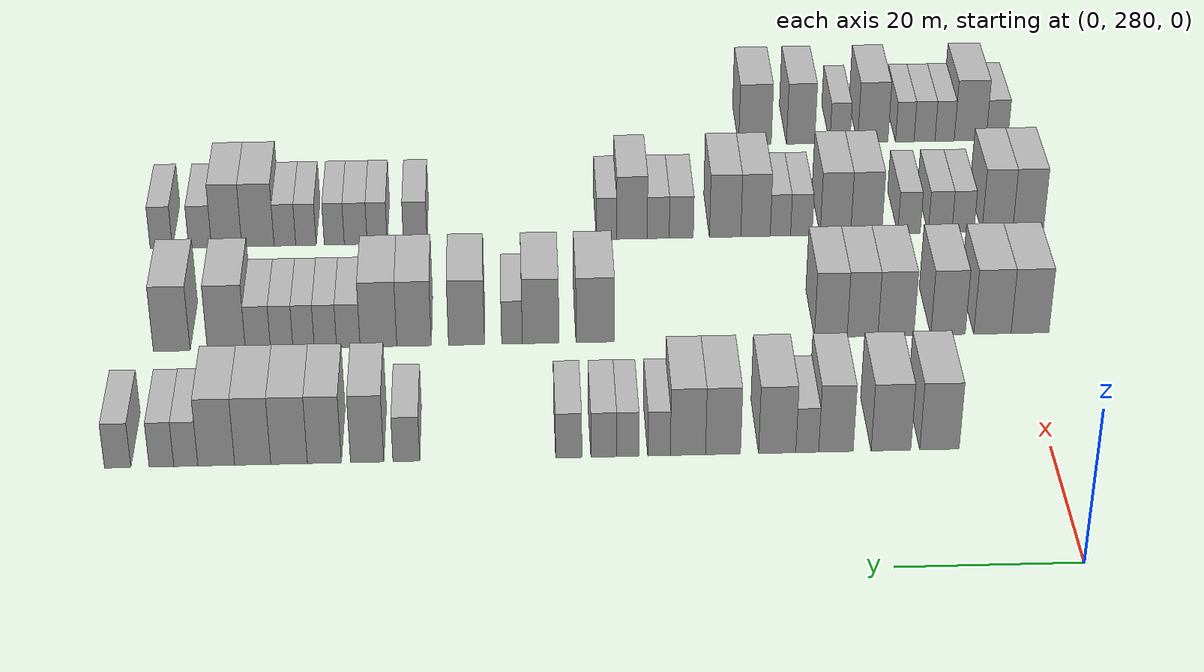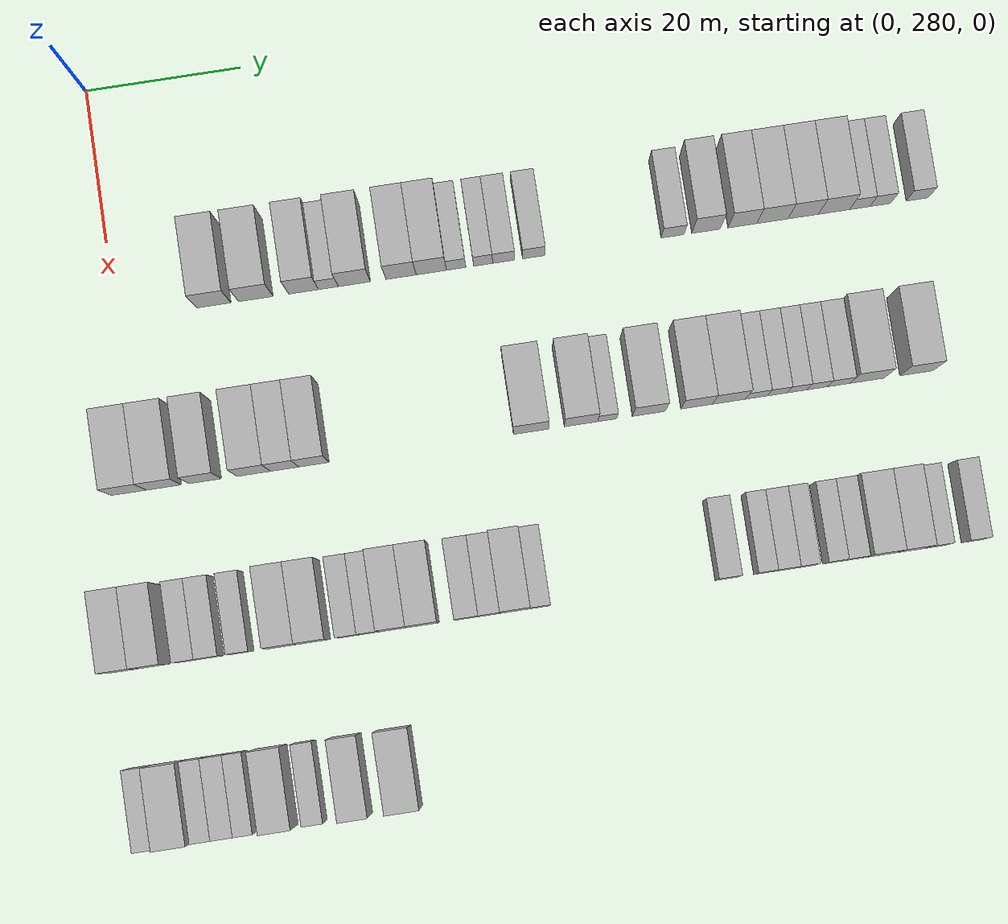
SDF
<sdf version="1.6">
 <world name="default">
  <model name="building_159">
   <static>1</static>
   <pose>25.0000 292.4620 0 0.000000 0.000000 0.000000</pose>
   <link name="link">
    <pose>0 0 4.50 0 0 0</pose>
    <collision name="collision"><geometry><box><size>10.0000 4.3796 9.0000</size></box></geometry></collision>
    <visual name="visual">
     <cast_shadows>0</cast_shadows>
     <geometry><box><size>10.0000 4.3796 9.0000</size></box></geometry>
     <material>
      <script>
       <uri>model://HANNAS_wall/materials/scripts</uri>
       <uri>model://HANNAS_wall/materials/textures</uri>
       <name>vrc/HANNAS_wall</name>
      </script>
     </material>
    </visual>
   </link>
  </model>
  <model name="building_160">
   <static>1</static>
   <pose>25.0000 297.8485 0 0.000000 0.000000 0.000000</pose>
   <link name="link">
    <pose>0 0 4.50 0 0 0</pose>
    <collision name="collision"><geometry><box><size>10.0000 4.3934 9.0000</size></box></geometry></collision>
    <visual name="visual">
     <cast_shadows>0</cast_shadows>
     <geometry><box><size>10.0000 4.3934 9.0000</size></box></geometry>
     <material>
      <script>
       <uri>model://HANNAS_wall/materials/scripts</uri>
       <uri>model://HANNAS_wall/materials/textures</uri>
       <name>vrc/HANNAS_wall</name>
      </script>
     </material>
    </visual>
   </link>
  </model>
  <model name="building_161">
   <static>1</static>
   <pose>25.0000 303.9558 0 0.000000 0.000000 0.000000</pose>
   <link name="link">
    <pose>0 0 4.50 0 0 0</pose>
    <collision name="collision"><geometry><box><size>10.0000 3.8213 9.0000</size></box></geometry></collision>
    <visual name="visual">
     <cast_shadows>0</cast_shadows>
     <geometry><box><size>10.0000 3.8213 9.0000</size></box></geometry>
     <material>
      <script>
       <uri>model://HANNAS_wall/materials/scripts</uri>
       <uri>model://HANNAS_wall/materials/textures</uri>
       <name>vrc/HANNAS_wall</name>
      </script>
     </material>
    </visual>
   </link>
  </model>
  <model name="building_162">
   <static>1</static>
   <pose>25.0000 307.1321 0 0.000000 0.000000 0.000000</pose>
   <link name="link">
    <pose>0 0 3.00 0 0 0</pose>
    <collision name="collision"><geometry><box><size>10.0000 2.5312 6.0000</size></box></geometry></collision>
    <visual name="visual">
     <cast_shadows>0</cast_shadows>
     <geometry><box><size>10.0000 2.5312 6.0000</size></box></geometry>
     <material>
      <script>
       <uri>model://HANNAS_wall/materials/scripts</uri>
       <uri>model://HANNAS_wall/materials/textures</uri>
       <name>vrc/HANNAS_wall</name>
      </script>
     </material>
    </visual>
   </link>
  </model>
  <model name="building_163">
   <static>1</static>
   <pose>25.0000 310.4619 0 0.000000 0.000000 0.000000</pose>
   <link name="link">
    <pose>0 0 4.50 0 0 0</pose>
    <collision name="collision"><geometry><box><size>10.0000 4.1284 9.0000</size></box></geometry></collision>
    <visual name="visual">
     <cast_shadows>0</cast_shadows>
     <geometry><box><size>10.0000 4.1284 9.0000</size></box></geometry>
     <material>
      <script>
       <uri>model://HANNAS_wall/materials/scripts</uri>
       <uri>model://HANNAS_wall/materials/textures</uri>
       <name>vrc/HANNAS_wall</name>
      </script>
     </material>
    </visual>
   </link>
  </model>
  <model name="building_164">
   <static>1</static>
   <pose>25.0000 316.4625 0 0.000000 0.000000 0.000000</pose>
   <link name="link">
    <pose>0 0 4.50 0 0 0</pose>
    <collision name="collision"><geometry><box><size>10.0000 3.8729 9.0000</size></box></geometry></collision>
    <visual name="visual">
     <cast_shadows>0</cast_shadows>
     <geometry><box><size>10.0000 3.8729 9.0000</size></box></geometry>
     <material>
      <script>
       <uri>model://HANNAS_wall/materials/scripts</uri>
       <uri>model://HANNAS_wall/materials/textures</uri>
       <name>vrc/HANNAS_wall</name>
      </script>
     </material>
    </visual>
   </link>
  </model>
  <model name="building_165">
   <static>1</static>
   <pose>25.0000 320.3444 0 0.000000 0.000000 0.000000</pose>
   <link name="link">
    <pose>0 0 4.50 0 0 0</pose>
    <collision name="collision"><geometry><box><size>10.0000 3.8910 9.0000</size></box></geometry></collision>
    <visual name="visual">
     <cast_shadows>0</cast_shadows>
     <geometry><box><size>10.0000 3.8910 9.0000</size></box></geometry>
     <material>
      <script>
       <uri>model://HANNAS_wall/materials/scripts</uri>
       <uri>model://HANNAS_wall/materials/textures</uri>
       <name>vrc/HANNAS_wall</name>
      </script>
     </material>
    </visual>
   </link>
  </model>
  <model name="building_166">
   <static>1</static>
   <pose>25.0000 323.5302 0 0.000000 0.000000 0.000000</pose>
   <link name="link">
    <pose>0 0 3.00 0 0 0</pose>
    <collision name="collision"><geometry><box><size>10.0000 2.4806 6.0000</size></box></geometry></collision>
    <visual name="visual">
     <cast_shadows>0</cast_shadows>
     <geometry><box><size>10.0000 2.4806 6.0000</size></box></geometry>
     <material>
      <script>
       <uri>model://HANNAS_wall/materials/scripts</uri>
       <uri>model://HANNAS_wall/materials/textures</uri>
       <name>vrc/HANNAS_wall</name>
      </script>
     </material>
    </visual>
   </link>
  </model>
  <model name="building_167">
   <static>1</static>
   <pose>25.0000 326.9950 0 0.000000 0.000000 0.000000</pose>
   <link name="link">
    <pose>0 0 3.00 0 0 0</pose>
    <collision name="collision"><geometry><box><size>10.0000 2.4490 6.0000</size></box></geometry></collision>
    <visual name="visual">
     <cast_shadows>0</cast_shadows>
     <geometry><box><size>10.0000 2.4490 6.0000</size></box></geometry>
     <material>
      <script>
       <uri>model://HANNAS_wall/materials/scripts</uri>
       <uri>model://HANNAS_wall/materials/textures</uri>
       <name>vrc/HANNAS_wall</name>
      </script>
     </material>
    </visual>
   </link>
  </model>
  <model name="building_168">
   <static>1</static>
   <pose>25.0000 329.6343 0 0.000000 0.000000 0.000000</pose>
   <link name="link">
    <pose>0 0 3.00 0 0 0</pose>
    <collision name="collision"><geometry><box><size>10.0000 2.8294 6.0000</size></box></geometry></collision>
    <visual name="visual">
     <cast_shadows>0</cast_shadows>
     <geometry><box><size>10.0000 2.8294 6.0000</size></box></geometry>
     <material>
      <script>
       <uri>model://HANNAS_wall/materials/scripts</uri>
       <uri>model://HANNAS_wall/materials/textures</uri>
       <name>vrc/HANNAS_wall</name>
      </script>
     </material>
    </visual>
   </link>
  </model>
  <model name="building_169">
   <static>1</static>
   <pose>25.0000 333.4883 0 0.000000 0.000000 0.000000</pose>
   <link name="link">
    <pose>0 0 3.00 0 0 0</pose>
    <collision name="collision"><geometry><box><size>10.0000 2.8788 6.0000</size></box></geometry></collision>
    <visual name="visual">
     <cast_shadows>0</cast_shadows>
     <geometry><box><size>10.0000 2.8788 6.0000</size></box></geometry>
     <material>
      <script>
       <uri>model://HANNAS_wall/materials/scripts</uri>
       <uri>model://HANNAS_wall/materials/textures</uri>
       <name>vrc/HANNAS_wall</name>
      </script>
     </material>
    </visual>
   </link>
  </model>
  <model name="building_170">
   <static>1</static>
   <pose>25.0000 351.3500 0 0.000000 0.000000 0.000000</pose>
   <link name="link">
    <pose>0 0 3.00 0 0 0</pose>
    <collision name="collision"><geometry><box><size>10.0000 2.9482 6.0000</size></box></geometry></collision>
    <visual name="visual">
     <cast_shadows>0</cast_shadows>
     <geometry><box><size>10.0000 2.9482 6.0000</size></box></geometry>
     <material>
      <script>
       <uri>model://HANNAS_wall/materials/scripts</uri>
       <uri>model://HANNAS_wall/materials/textures</uri>
       <name>vrc/HANNAS_wall</name>
      </script>
     </material>
    </visual>
   </link>
  </model>
  <model name="building_171">
   <static>1</static>
   <pose>25.0000 355.6540 0 0.000000 0.000000 0.000000</pose>
   <link name="link">
    <pose>0 0 4.50 0 0 0</pose>
    <collision name="collision"><geometry><box><size>10.0000 3.6598 9.0000</size></box></geometry></collision>
    <visual name="visual">
     <cast_shadows>0</cast_shadows>
     <geometry><box><size>10.0000 3.6598 9.0000</size></box></geometry>
     <material>
      <script>
       <uri>model://HANNAS_wall/materials/scripts</uri>
       <uri>model://HANNAS_wall/materials/textures</uri>
       <name>vrc/HANNAS_wall</name>
      </script>
     </material>
    </visual>
   </link>
  </model>
  <model name="building_172">
   <static>1</static>
   <pose>25.0000 360.3440 0 0.000000 0.000000 0.000000</pose>
   <link name="link">
    <pose>0 0 4.50 0 0 0</pose>
    <collision name="collision"><geometry><box><size>10.0000 3.7204 9.0000</size></box></geometry></collision>
    <visual name="visual">
     <cast_shadows>0</cast_shadows>
     <geometry><box><size>10.0000 3.7204 9.0000</size></box></geometry>
     <material>
      <script>
       <uri>model://HANNAS_wall/materials/scripts</uri>
       <uri>model://HANNAS_wall/materials/textures</uri>
       <name>vrc/HANNAS_wall</name>
      </script>
     </material>
    </visual>
   </link>
  </model>
  <model name="building_173">
   <static>1</static>
   <pose>25.0000 364.2121 0 0.000000 0.000000 0.000000</pose>
   <link name="link">
    <pose>0 0 4.50 0 0 0</pose>
    <collision name="collision"><geometry><box><size>10.0000 4.0158 9.0000</size></box></geometry></collision>
    <visual name="visual">
     <cast_shadows>0</cast_shadows>
     <geometry><box><size>10.0000 4.0158 9.0000</size></box></geometry>
     <material>
      <script>
       <uri>model://HANNAS_wall/materials/scripts</uri>
       <uri>model://HANNAS_wall/materials/textures</uri>
       <name>vrc/HANNAS_wall</name>
      </script>
     </material>
    </visual>
   </link>
  </model>
  <model name="building_174">
   <static>1</static>
   <pose>25.0000 368.1944 0 0.000000 0.000000 0.000000</pose>
   <link name="link">
    <pose>0 0 4.50 0 0 0</pose>
    <collision name="collision"><geometry><box><size>10.0000 3.9489 9.0000</size></box></geometry></collision>
    <visual name="visual">
     <cast_shadows>0</cast_shadows>
     <geometry><box><size>10.0000 3.9489 9.0000</size></box></geometry>
     <material>
      <script>
       <uri>model://HANNAS_wall/materials/scripts</uri>
       <uri>model://HANNAS_wall/materials/textures</uri>
       <name>vrc/HANNAS_wall</name>
      </script>
     </material>
    </visual>
   </link>
  </model>
  <model name="building_175">
   <static>1</static>
   <pose>25.0000 372.1816 0 0.000000 0.000000 0.000000</pose>
   <link name="link">
    <pose>0 0 4.50 0 0 0</pose>
    <collision name="collision"><geometry><box><size>10.0000 4.0254 9.0000</size></box></geometry></collision>
    <visual name="visual">
     <cast_shadows>0</cast_shadows>
     <geometry><box><size>10.0000 4.0254 9.0000</size></box></geometry>
     <material>
      <script>
       <uri>model://HANNAS_wall/materials/scripts</uri>
       <uri>model://HANNAS_wall/materials/textures</uri>
       <name>vrc/HANNAS_wall</name>
      </script>
     </material>
    </visual>
   </link>
  </model>
  <model name="building_176">
   <static>1</static>
   <pose>25.0000 375.5093 0 0.000000 0.000000 0.000000</pose>
   <link name="link">
    <pose>0 0 3.00 0 0 0</pose>
    <collision name="collision"><geometry><box><size>10.0000 2.6300 6.0000</size></box></geometry></collision>
    <visual name="visual">
     <cast_shadows>0</cast_shadows>
     <geometry><box><size>10.0000 2.6300 6.0000</size></box></geometry>
     <material>
      <script>
       <uri>model://HANNAS_wall/materials/scripts</uri>
       <uri>model://HANNAS_wall/materials/textures</uri>
       <name>vrc/HANNAS_wall</name>
      </script>
     </material>
    </visual>
   </link>
  </model>
  <model name="building_177">
   <static>1</static>
   <pose>25.0000 378.1706 0 0.000000 0.000000 0.000000</pose>
   <link name="link">
    <pose>0 0 3.00 0 0 0</pose>
    <collision name="collision"><geometry><box><size>10.0000 2.6928 6.0000</size></box></geometry></collision>
    <visual name="visual">
     <cast_shadows>0</cast_shadows>
     <geometry><box><size>10.0000 2.6928 6.0000</size></box></geometry>
     <material>
      <script>
       <uri>model://HANNAS_wall/materials/scripts</uri>
       <uri>model://HANNAS_wall/materials/textures</uri>
       <name>vrc/HANNAS_wall</name>
      </script>
     </material>
    </visual>
   </link>
  </model>
  <model name="building_178">
   <static>1</static>
   <pose>25.0000 382.9557 0 0.000000 0.000000 0.000000</pose>
   <link name="link">
    <pose>0 0 3.00 0 0 0</pose>
    <collision name="collision"><geometry><box><size>10.0000 2.8774 6.0000</size></box></geometry></collision>
    <visual name="visual">
     <cast_shadows>0</cast_shadows>
     <geometry><box><size>10.0000 2.8774 6.0000</size></box></geometry>
     <material>
      <script>
       <uri>model://HANNAS_wall/materials/scripts</uri>
       <uri>model://HANNAS_wall/materials/textures</uri>
       <name>vrc/HANNAS_wall</name>
      </script>
     </material>
    </visual>
   </link>
  </model>
  <model name="building_337">
   <static>1</static>
   <pose>47.0000 278.6740 0 0.000000 0.000000 0.000000</pose>
   <link name="link">
    <pose>0 0 4.50 0 0 0</pose>
    <collision name="collision"><geometry><box><size>10.0000 4.4640 9.0000</size></box></geometry></collision>
    <visual name="visual">
     <cast_shadows>0</cast_shadows>
     <geometry><box><size>10.0000 4.4640 9.0000</size></box></geometry>
     <material>
      <script>
       <uri>model://HANNAS_wall/materials/scripts</uri>
       <uri>model://HANNAS_wall/materials/textures</uri>
       <name>vrc/HANNAS_wall</name>
      </script>
     </material>
    </visual>
   </link>
  </model>
  <model name="building_338">
   <static>1</static>
   <pose>47.0000 283.1089 0 0.000000 0.000000 0.000000</pose>
   <link name="link">
    <pose>0 0 4.50 0 0 0</pose>
    <collision name="collision"><geometry><box><size>10.0000 4.4058 9.0000</size></box></geometry></collision>
    <visual name="visual">
     <cast_shadows>0</cast_shadows>
     <geometry><box><size>10.0000 4.4058 9.0000</size></box></geometry>
     <material>
      <script>
       <uri>model://HANNAS_wall/materials/scripts</uri>
       <uri>model://HANNAS_wall/materials/textures</uri>
       <name>vrc/HANNAS_wall</name>
      </script>
     </material>
    </visual>
   </link>
  </model>
  <model name="building_339">
   <static>1</static>
   <pose>47.0000 288.3445 0 0.000000 0.000000 0.000000</pose>
   <link name="link">
    <pose>0 0 4.50 0 0 0</pose>
    <collision name="collision"><geometry><box><size>10.0000 4.0654 9.0000</size></box></geometry></collision>
    <visual name="visual">
     <cast_shadows>0</cast_shadows>
     <geometry><box><size>10.0000 4.0654 9.0000</size></box></geometry>
     <material>
      <script>
       <uri>model://HANNAS_wall/materials/scripts</uri>
       <uri>model://HANNAS_wall/materials/textures</uri>
       <name>vrc/HANNAS_wall</name>
      </script>
     </material>
    </visual>
   </link>
  </model>
  <model name="building_340">
   <static>1</static>
   <pose>47.0000 294.4949 0 0.000000 0.000000 0.000000</pose>
   <link name="link">
    <pose>0 0 4.50 0 0 0</pose>
    <collision name="collision"><geometry><box><size>10.0000 4.2354 9.0000</size></box></geometry></collision>
    <visual name="visual">
     <cast_shadows>0</cast_shadows>
     <geometry><box><size>10.0000 4.2354 9.0000</size></box></geometry>
     <material>
      <script>
       <uri>model://HANNAS_wall/materials/scripts</uri>
       <uri>model://HANNAS_wall/materials/textures</uri>
       <name>vrc/HANNAS_wall</name>
      </script>
     </material>
    </visual>
   </link>
  </model>
  <model name="building_341">
   <static>1</static>
   <pose>47.0000 298.4203 0 0.000000 0.000000 0.000000</pose>
   <link name="link">
    <pose>0 0 4.50 0 0 0</pose>
    <collision name="collision"><geometry><box><size>10.0000 3.6154 9.0000</size></box></geometry></collision>
    <visual name="visual">
     <cast_shadows>0</cast_shadows>
     <geometry><box><size>10.0000 3.6154 9.0000</size></box></geometry>
     <material>
      <script>
       <uri>model://HANNAS_wall/materials/scripts</uri>
       <uri>model://HANNAS_wall/materials/textures</uri>
       <name>vrc/HANNAS_wall</name>
      </script>
     </material>
    </visual>
   </link>
  </model>
  <model name="building_342">
   <static>1</static>
   <pose>47.0000 302.1517 0 0.000000 0.000000 0.000000</pose>
   <link name="link">
    <pose>0 0 4.50 0 0 0</pose>
    <collision name="collision"><geometry><box><size>10.0000 3.8473 9.0000</size></box></geometry></collision>
    <visual name="visual">
     <cast_shadows>0</cast_shadows>
     <geometry><box><size>10.0000 3.8473 9.0000</size></box></geometry>
     <material>
      <script>
       <uri>model://HANNAS_wall/materials/scripts</uri>
       <uri>model://HANNAS_wall/materials/textures</uri>
       <name>vrc/HANNAS_wall</name>
      </script>
     </material>
    </visual>
   </link>
  </model>
  <model name="building_343">
   <static>1</static>
   <pose>47.0000 329.7887 0 0.000000 0.000000 0.000000</pose>
   <link name="link">
    <pose>0 0 4.50 0 0 0</pose>
    <collision name="collision"><geometry><box><size>10.0000 4.4756 9.0000</size></box></geometry></collision>
    <visual name="visual">
     <cast_shadows>0</cast_shadows>
     <geometry><box><size>10.0000 4.4756 9.0000</size></box></geometry>
     <material>
      <script>
       <uri>model://HANNAS_wall/materials/scripts</uri>
       <uri>model://HANNAS_wall/materials/textures</uri>
       <name>vrc/HANNAS_wall</name>
      </script>
     </material>
    </visual>
   </link>
  </model>
  <model name="building_344">
   <static>1</static>
   <pose>47.0000 336.1633 0 0.000000 0.000000 0.000000</pose>
   <link name="link">
    <pose>0 0 4.50 0 0 0</pose>
    <collision name="collision"><geometry><box><size>10.0000 4.2736 9.0000</size></box></geometry></collision>
    <visual name="visual">
     <cast_shadows>0</cast_shadows>
     <geometry><box><size>10.0000 4.2736 9.0000</size></box></geometry>
     <material>
      <script>
       <uri>model://HANNAS_wall/materials/scripts</uri>
       <uri>model://HANNAS_wall/materials/textures</uri>
       <name>vrc/HANNAS_wall</name>
      </script>
     </material>
    </visual>
   </link>
  </model>
  <model name="building_345">
   <static>1</static>
   <pose>47.0000 339.5050 0 0.000000 0.000000 0.000000</pose>
   <link name="link">
    <pose>0 0 3.00 0 0 0</pose>
    <collision name="collision"><geometry><box><size>10.0000 2.4097 6.0000</size></box></geometry></collision>
    <visual name="visual">
     <cast_shadows>0</cast_shadows>
     <geometry><box><size>10.0000 2.4097 6.0000</size></box></geometry>
     <material>
      <script>
       <uri>model://HANNAS_wall/materials/scripts</uri>
       <uri>model://HANNAS_wall/materials/textures</uri>
       <name>vrc/HANNAS_wall</name>
      </script>
     </material>
    </visual>
   </link>
  </model>
  <model name="building_346">
   <static>1</static>
   <pose>47.0000 344.8101 0 0.000000 0.000000 0.000000</pose>
   <link name="link">
    <pose>0 0 4.50 0 0 0</pose>
    <collision name="collision"><geometry><box><size>10.0000 4.2007 9.0000</size></box></geometry></collision>
    <visual name="visual">
     <cast_shadows>0</cast_shadows>
     <geometry><box><size>10.0000 4.2007 9.0000</size></box></geometry>
     <material>
      <script>
       <uri>model://HANNAS_wall/materials/scripts</uri>
       <uri>model://HANNAS_wall/materials/textures</uri>
       <name>vrc/HANNAS_wall</name>
      </script>
     </material>
    </visual>
   </link>
  </model>
  <model name="building_347">
   <static>1</static>
   <pose>47.0000 350.9230 0 0.000000 0.000000 0.000000</pose>
   <link name="link">
    <pose>0 0 4.50 0 0 0</pose>
    <collision name="collision"><geometry><box><size>10.0000 4.0250 9.0000</size></box></geometry></collision>
    <visual name="visual">
     <cast_shadows>0</cast_shadows>
     <geometry><box><size>10.0000 4.0250 9.0000</size></box></geometry>
     <material>
      <script>
       <uri>model://HANNAS_wall/materials/scripts</uri>
       <uri>model://HANNAS_wall/materials/textures</uri>
       <name>vrc/HANNAS_wall</name>
      </script>
     </material>
    </visual>
   </link>
  </model>
  <model name="building_348">
   <static>1</static>
   <pose>47.0000 355.0727 0 0.000000 0.000000 0.000000</pose>
   <link name="link">
    <pose>0 0 4.50 0 0 0</pose>
    <collision name="collision"><geometry><box><size>10.0000 4.2743 9.0000</size></box></geometry></collision>
    <visual name="visual">
     <cast_shadows>0</cast_shadows>
     <geometry><box><size>10.0000 4.2743 9.0000</size></box></geometry>
     <material>
      <script>
       <uri>model://HANNAS_wall/materials/scripts</uri>
       <uri>model://HANNAS_wall/materials/textures</uri>
       <name>vrc/HANNAS_wall</name>
      </script>
     </material>
    </visual>
   </link>
  </model>
  <model name="building_349">
   <static>1</static>
   <pose>47.0000 358.5777 0 0.000000 0.000000 0.000000</pose>
   <link name="link">
    <pose>0 0 3.00 0 0 0</pose>
    <collision name="collision"><geometry><box><size>10.0000 2.7357 6.0000</size></box></geometry></collision>
    <visual name="visual">
     <cast_shadows>0</cast_shadows>
     <geometry><box><size>10.0000 2.7357 6.0000</size></box></geometry>
     <material>
      <script>
       <uri>model://HANNAS_wall/materials/scripts</uri>
       <uri>model://HANNAS_wall/materials/textures</uri>
       <name>vrc/HANNAS_wall</name>
      </script>
     </material>
    </visual>
   </link>
  </model>
  <model name="building_350">
   <static>1</static>
   <pose>47.0000 361.2428 0 0.000000 0.000000 0.000000</pose>
   <link name="link">
    <pose>0 0 3.00 0 0 0</pose>
    <collision name="collision"><geometry><box><size>10.0000 2.5946 6.0000</size></box></geometry></collision>
    <visual name="visual">
     <cast_shadows>0</cast_shadows>
     <geometry><box><size>10.0000 2.5946 6.0000</size></box></geometry>
     <material>
      <script>
       <uri>model://HANNAS_wall/materials/scripts</uri>
       <uri>model://HANNAS_wall/materials/textures</uri>
       <name>vrc/HANNAS_wall</name>
      </script>
     </material>
    </visual>
   </link>
  </model>
  <model name="building_351">
   <static>1</static>
   <pose>47.0000 363.7810 0 0.000000 0.000000 0.000000</pose>
   <link name="link">
    <pose>0 0 3.00 0 0 0</pose>
    <collision name="collision"><geometry><box><size>10.0000 2.4818 6.0000</size></box></geometry></collision>
    <visual name="visual">
     <cast_shadows>0</cast_shadows>
     <geometry><box><size>10.0000 2.4818 6.0000</size></box></geometry>
     <material>
      <script>
       <uri>model://HANNAS_wall/materials/scripts</uri>
       <uri>model://HANNAS_wall/materials/textures</uri>
       <name>vrc/HANNAS_wall</name>
      </script>
     </material>
    </visual>
   </link>
  </model>
  <model name="building_352">
   <static>1</static>
   <pose>47.0000 366.3287 0 0.000000 0.000000 0.000000</pose>
   <link name="link">
    <pose>0 0 3.00 0 0 0</pose>
    <collision name="collision"><geometry><box><size>10.0000 2.6135 6.0000</size></box></geometry></collision>
    <visual name="visual">
     <cast_shadows>0</cast_shadows>
     <geometry><box><size>10.0000 2.6135 6.0000</size></box></geometry>
     <material>
      <script>
       <uri>model://HANNAS_wall/materials/scripts</uri>
       <uri>model://HANNAS_wall/materials/textures</uri>
       <name>vrc/HANNAS_wall</name>
      </script>
     </material>
    </visual>
   </link>
  </model>
  <model name="building_353">
   <static>1</static>
   <pose>47.0000 369.0932 0 0.000000 0.000000 0.000000</pose>
   <link name="link">
    <pose>0 0 3.00 0 0 0</pose>
    <collision name="collision"><geometry><box><size>10.0000 2.9156 6.0000</size></box></geometry></collision>
    <visual name="visual">
     <cast_shadows>0</cast_shadows>
     <geometry><box><size>10.0000 2.9156 6.0000</size></box></geometry>
     <material>
      <script>
       <uri>model://HANNAS_wall/materials/scripts</uri>
       <uri>model://HANNAS_wall/materials/textures</uri>
       <name>vrc/HANNAS_wall</name>
      </script>
     </material>
    </visual>
   </link>
  </model>
  <model name="building_354">
   <static>1</static>
   <pose>47.0000 372.7509 0 0.000000 0.000000 0.000000</pose>
   <link name="link">
    <pose>0 0 4.50 0 0 0</pose>
    <collision name="collision"><geometry><box><size>10.0000 4.3998 9.0000</size></box></geometry></collision>
    <visual name="visual">
     <cast_shadows>0</cast_shadows>
     <geometry><box><size>10.0000 4.3998 9.0000</size></box></geometry>
     <material>
      <script>
       <uri>model://HANNAS_wall/materials/scripts</uri>
       <uri>model://HANNAS_wall/materials/textures</uri>
       <name>vrc/HANNAS_wall</name>
      </script>
     </material>
    </visual>
   </link>
  </model>
  <model name="building_355">
   <static>1</static>
   <pose>47.0000 379.0791 0 0.000000 0.000000 0.000000</pose>
   <link name="link">
    <pose>0 0 4.50 0 0 0</pose>
    <collision name="collision"><geometry><box><size>10.0000 4.2567 9.0000</size></box></geometry></collision>
    <visual name="visual">
     <cast_shadows>0</cast_shadows>
     <geometry><box><size>10.0000 4.2567 9.0000</size></box></geometry>
     <material>
      <script>
       <uri>model://HANNAS_wall/materials/scripts</uri>
       <uri>model://HANNAS_wall/materials/textures</uri>
       <name>vrc/HANNAS_wall</name>
      </script>
     </material>
    </visual>
   </link>
  </model>
  <model name="building_518">
   <static>1</static>
   <pose>69.0000 275.2002 0 0.000000 0.000000 0.000000</pose>
   <link name="link">
    <pose>0 0 4.50 0 0 0</pose>
    <collision name="collision"><geometry><box><size>10.0000 3.8353 9.0000</size></box></geometry></collision>
    <visual name="visual">
     <cast_shadows>0</cast_shadows>
     <geometry><box><size>10.0000 3.8353 9.0000</size></box></geometry>
     <material>
      <script>
       <uri>model://HANNAS_wall/materials/scripts</uri>
       <uri>model://HANNAS_wall/materials/textures</uri>
       <name>vrc/HANNAS_wall</name>
      </script>
     </material>
    </visual>
   </link>
  </model>
  <model name="building_519">
   <static>1</static>
   <pose>69.0000 279.0358 0 0.000000 0.000000 0.000000</pose>
   <link name="link">
    <pose>0 0 4.50 0 0 0</pose>
    <collision name="collision"><geometry><box><size>10.0000 3.8358 9.0000</size></box></geometry></collision>
    <visual name="visual">
     <cast_shadows>0</cast_shadows>
     <geometry><box><size>10.0000 3.8358 9.0000</size></box></geometry>
     <material>
      <script>
       <uri>model://HANNAS_wall/materials/scripts</uri>
       <uri>model://HANNAS_wall/materials/textures</uri>
       <name>vrc/HANNAS_wall</name>
      </script>
     </material>
    </visual>
   </link>
  </model>
  <model name="building_520">
   <static>1</static>
   <pose>69.0000 283.3263 0 0.000000 0.000000 0.000000</pose>
   <link name="link">
    <pose>0 0 3.00 0 0 0</pose>
    <collision name="collision"><geometry><box><size>10.0000 2.7453 6.0000</size></box></geometry></collision>
    <visual name="visual">
     <cast_shadows>0</cast_shadows>
     <geometry><box><size>10.0000 2.7453 6.0000</size></box></geometry>
     <material>
      <script>
       <uri>model://HANNAS_wall/materials/scripts</uri>
       <uri>model://HANNAS_wall/materials/textures</uri>
       <name>vrc/HANNAS_wall</name>
      </script>
     </material>
    </visual>
   </link>
  </model>
  <model name="building_521">
   <static>1</static>
   <pose>69.0000 286.1727 0 0.000000 0.000000 0.000000</pose>
   <link name="link">
    <pose>0 0 3.00 0 0 0</pose>
    <collision name="collision"><geometry><box><size>10.0000 2.9474 6.0000</size></box></geometry></collision>
    <visual name="visual">
     <cast_shadows>0</cast_shadows>
     <geometry><box><size>10.0000 2.9474 6.0000</size></box></geometry>
     <material>
      <script>
       <uri>model://HANNAS_wall/materials/scripts</uri>
       <uri>model://HANNAS_wall/materials/textures</uri>
       <name>vrc/HANNAS_wall</name>
      </script>
     </material>
    </visual>
   </link>
  </model>
  <model name="building_522">
   <static>1</static>
   <pose>69.0000 290.0420 0 0.000000 0.000000 0.000000</pose>
   <link name="link">
    <pose>0 0 3.00 0 0 0</pose>
    <collision name="collision"><geometry><box><size>10.0000 2.7912 6.0000</size></box></geometry></collision>
    <visual name="visual">
     <cast_shadows>0</cast_shadows>
     <geometry><box><size>10.0000 2.7912 6.0000</size></box></geometry>
     <material>
      <script>
       <uri>model://HANNAS_wall/materials/scripts</uri>
       <uri>model://HANNAS_wall/materials/textures</uri>
       <name>vrc/HANNAS_wall</name>
      </script>
     </material>
    </visual>
   </link>
  </model>
  <model name="building_523">
   <static>1</static>
   <pose>69.0000 295.3718 0 0.000000 0.000000 0.000000</pose>
   <link name="link">
    <pose>0 0 4.50 0 0 0</pose>
    <collision name="collision"><geometry><box><size>10.0000 3.8684 9.0000</size></box></geometry></collision>
    <visual name="visual">
     <cast_shadows>0</cast_shadows>
     <geometry><box><size>10.0000 3.8684 9.0000</size></box></geometry>
     <material>
      <script>
       <uri>model://HANNAS_wall/materials/scripts</uri>
       <uri>model://HANNAS_wall/materials/textures</uri>
       <name>vrc/HANNAS_wall</name>
      </script>
     </material>
    </visual>
   </link>
  </model>
  <model name="building_524">
   <static>1</static>
   <pose>69.0000 299.2043 0 0.000000 0.000000 0.000000</pose>
   <link name="link">
    <pose>0 0 4.50 0 0 0</pose>
    <collision name="collision"><geometry><box><size>10.0000 3.7966 9.0000</size></box></geometry></collision>
    <visual name="visual">
     <cast_shadows>0</cast_shadows>
     <geometry><box><size>10.0000 3.7966 9.0000</size></box></geometry>
     <material>
      <script>
       <uri>model://HANNAS_wall/materials/scripts</uri>
       <uri>model://HANNAS_wall/materials/textures</uri>
       <name>vrc/HANNAS_wall</name>
      </script>
     </material>
    </visual>
   </link>
  </model>
  <model name="building_525">
   <static>1</static>
   <pose>69.0000 303.4395 0 0.000000 0.000000 0.000000</pose>
   <link name="link">
    <pose>0 0 3.00 0 0 0</pose>
    <collision name="collision"><geometry><box><size>10.0000 2.6739 6.0000</size></box></geometry></collision>
    <visual name="visual">
     <cast_shadows>0</cast_shadows>
     <geometry><box><size>10.0000 2.6739 6.0000</size></box></geometry>
     <material>
      <script>
       <uri>model://HANNAS_wall/materials/scripts</uri>
       <uri>model://HANNAS_wall/materials/textures</uri>
       <name>vrc/HANNAS_wall</name>
      </script>
     </material>
    </visual>
   </link>
  </model>
  <model name="building_526">
   <static>1</static>
   <pose>69.0000 306.0427 0 0.000000 0.000000 0.000000</pose>
   <link name="link">
    <pose>0 0 3.00 0 0 0</pose>
    <collision name="collision"><geometry><box><size>10.0000 2.5325 6.0000</size></box></geometry></collision>
    <visual name="visual">
     <cast_shadows>0</cast_shadows>
     <geometry><box><size>10.0000 2.5325 6.0000</size></box></geometry>
     <material>
      <script>
       <uri>model://HANNAS_wall/materials/scripts</uri>
       <uri>model://HANNAS_wall/materials/textures</uri>
       <name>vrc/HANNAS_wall</name>
      </script>
     </material>
    </visual>
   </link>
  </model>
  <model name="building_527">
   <static>1</static>
   <pose>69.0000 309.1394 0 0.000000 0.000000 0.000000</pose>
   <link name="link">
    <pose>0 0 4.50 0 0 0</pose>
    <collision name="collision"><geometry><box><size>10.0000 3.6608 9.0000</size></box></geometry></collision>
    <visual name="visual">
     <cast_shadows>0</cast_shadows>
     <geometry><box><size>10.0000 3.6608 9.0000</size></box></geometry>
     <material>
      <script>
       <uri>model://HANNAS_wall/materials/scripts</uri>
       <uri>model://HANNAS_wall/materials/textures</uri>
       <name>vrc/HANNAS_wall</name>
      </script>
     </material>
    </visual>
   </link>
  </model>
  <model name="building_528">
   <static>1</static>
   <pose>69.0000 312.9093 0 0.000000 0.000000 0.000000</pose>
   <link name="link">
    <pose>0 0 4.50 0 0 0</pose>
    <collision name="collision"><geometry><box><size>10.0000 3.8791 9.0000</size></box></geometry></collision>
    <visual name="visual">
     <cast_shadows>0</cast_shadows>
     <geometry><box><size>10.0000 3.8791 9.0000</size></box></geometry>
     <material>
      <script>
       <uri>model://HANNAS_wall/materials/scripts</uri>
       <uri>model://HANNAS_wall/materials/textures</uri>
       <name>vrc/HANNAS_wall</name>
      </script>
     </material>
    </visual>
   </link>
  </model>
  <model name="building_529">
   <static>1</static>
   <pose>69.0000 318.3434 0 0.000000 0.000000 0.000000</pose>
   <link name="link">
    <pose>0 0 3.00 0 0 0</pose>
    <collision name="collision"><geometry><box><size>10.0000 2.9891 6.0000</size></box></geometry></collision>
    <visual name="visual">
     <cast_shadows>0</cast_shadows>
     <geometry><box><size>10.0000 2.9891 6.0000</size></box></geometry>
     <material>
      <script>
       <uri>model://HANNAS_wall/materials/scripts</uri>
       <uri>model://HANNAS_wall/materials/textures</uri>
       <name>vrc/HANNAS_wall</name>
      </script>
     </material>
    </visual>
   </link>
  </model>
  <model name="building_530">
   <static>1</static>
   <pose>69.0000 321.1990 0 0.000000 0.000000 0.000000</pose>
   <link name="link">
    <pose>0 0 3.00 0 0 0</pose>
    <collision name="collision"><geometry><box><size>10.0000 2.7222 6.0000</size></box></geometry></collision>
    <visual name="visual">
     <cast_shadows>0</cast_shadows>
     <geometry><box><size>10.0000 2.7222 6.0000</size></box></geometry>
     <material>
      <script>
       <uri>model://HANNAS_wall/materials/scripts</uri>
       <uri>model://HANNAS_wall/materials/textures</uri>
       <name>vrc/HANNAS_wall</name>
      </script>
     </material>
    </visual>
   </link>
  </model>
  <model name="building_531">
   <static>1</static>
   <pose>69.0000 324.4465 0 0.000000 0.000000 0.000000</pose>
   <link name="link">
    <pose>0 0 4.50 0 0 0</pose>
    <collision name="collision"><geometry><box><size>10.0000 3.7727 9.0000</size></box></geometry></collision>
    <visual name="visual">
     <cast_shadows>0</cast_shadows>
     <geometry><box><size>10.0000 3.7727 9.0000</size></box></geometry>
     <material>
      <script>
       <uri>model://HANNAS_wall/materials/scripts</uri>
       <uri>model://HANNAS_wall/materials/textures</uri>
       <name>vrc/HANNAS_wall</name>
      </script>
     </material>
    </visual>
   </link>
  </model>
  <model name="building_532">
   <static>1</static>
   <pose>69.0000 327.5846 0 0.000000 0.000000 0.000000</pose>
   <link name="link">
    <pose>0 0 3.00 0 0 0</pose>
    <collision name="collision"><geometry><box><size>10.0000 2.5034 6.0000</size></box></geometry></collision>
    <visual name="visual">
     <cast_shadows>0</cast_shadows>
     <geometry><box><size>10.0000 2.5034 6.0000</size></box></geometry>
     <material>
      <script>
       <uri>model://HANNAS_wall/materials/scripts</uri>
       <uri>model://HANNAS_wall/materials/textures</uri>
       <name>vrc/HANNAS_wall</name>
      </script>
     </material>
    </visual>
   </link>
  </model>
  <model name="building_533">
   <static>1</static>
   <pose>69.0000 351.1956 0 0.000000 0.000000 0.000000</pose>
   <link name="link">
    <pose>0 0 3.00 0 0 0</pose>
    <collision name="collision"><geometry><box><size>10.0000 2.9062 6.0000</size></box></geometry></collision>
    <visual name="visual">
     <cast_shadows>0</cast_shadows>
     <geometry><box><size>10.0000 2.9062 6.0000</size></box></geometry>
     <material>
      <script>
       <uri>model://HANNAS_wall/materials/scripts</uri>
       <uri>model://HANNAS_wall/materials/textures</uri>
       <name>vrc/HANNAS_wall</name>
      </script>
     </material>
    </visual>
   </link>
  </model>
  <model name="building_534">
   <static>1</static>
   <pose>69.0000 355.8854 0 0.000000 0.000000 0.000000</pose>
   <link name="link">
    <pose>0 0 3.00 0 0 0</pose>
    <collision name="collision"><geometry><box><size>10.0000 2.4735 6.0000</size></box></geometry></collision>
    <visual name="visual">
     <cast_shadows>0</cast_shadows>
     <geometry><box><size>10.0000 2.4735 6.0000</size></box></geometry>
     <material>
      <script>
       <uri>model://HANNAS_wall/materials/scripts</uri>
       <uri>model://HANNAS_wall/materials/textures</uri>
       <name>vrc/HANNAS_wall</name>
      </script>
     </material>
    </visual>
   </link>
  </model>
  <model name="building_535">
   <static>1</static>
   <pose>69.0000 358.5315 0 0.000000 0.000000 0.000000</pose>
   <link name="link">
    <pose>0 0 3.00 0 0 0</pose>
    <collision name="collision"><geometry><box><size>10.0000 2.8187 6.0000</size></box></geometry></collision>
    <visual name="visual">
     <cast_shadows>0</cast_shadows>
     <geometry><box><size>10.0000 2.8187 6.0000</size></box></geometry>
     <material>
      <script>
       <uri>model://HANNAS_wall/materials/scripts</uri>
       <uri>model://HANNAS_wall/materials/textures</uri>
       <name>vrc/HANNAS_wall</name>
      </script>
     </material>
    </visual>
   </link>
  </model>
  <model name="building_536">
   <static>1</static>
   <pose>69.0000 361.1695 0 0.000000 0.000000 0.000000</pose>
   <link name="link">
    <pose>0 0 3.00 0 0 0</pose>
    <collision name="collision"><geometry><box><size>10.0000 2.4572 6.0000</size></box></geometry></collision>
    <visual name="visual">
     <cast_shadows>0</cast_shadows>
     <geometry><box><size>10.0000 2.4572 6.0000</size></box></geometry>
     <material>
      <script>
       <uri>model://HANNAS_wall/materials/scripts</uri>
       <uri>model://HANNAS_wall/materials/textures</uri>
       <name>vrc/HANNAS_wall</name>
      </script>
     </material>
    </visual>
   </link>
  </model>
  <model name="building_537">
   <static>1</static>
   <pose>69.0000 364.6521 0 0.000000 0.000000 0.000000</pose>
   <link name="link">
    <pose>0 0 3.00 0 0 0</pose>
    <collision name="collision"><geometry><box><size>10.0000 2.5081 6.0000</size></box></geometry></collision>
    <visual name="visual">
     <cast_shadows>0</cast_shadows>
     <geometry><box><size>10.0000 2.5081 6.0000</size></box></geometry>
     <material>
      <script>
       <uri>model://HANNAS_wall/materials/scripts</uri>
       <uri>model://HANNAS_wall/materials/textures</uri>
       <name>vrc/HANNAS_wall</name>
      </script>
     </material>
    </visual>
   </link>
  </model>
  <model name="building_538">
   <static>1</static>
   <pose>69.0000 367.2328 0 0.000000 0.000000 0.000000</pose>
   <link name="link">
    <pose>0 0 3.00 0 0 0</pose>
    <collision name="collision"><geometry><box><size>10.0000 2.6533 6.0000</size></box></geometry></collision>
    <visual name="visual">
     <cast_shadows>0</cast_shadows>
     <geometry><box><size>10.0000 2.6533 6.0000</size></box></geometry>
     <material>
      <script>
       <uri>model://HANNAS_wall/materials/scripts</uri>
       <uri>model://HANNAS_wall/materials/textures</uri>
       <name>vrc/HANNAS_wall</name>
      </script>
     </material>
    </visual>
   </link>
  </model>
  <model name="building_539">
   <static>1</static>
   <pose>69.0000 370.5500 0 0.000000 0.000000 0.000000</pose>
   <link name="link">
    <pose>0 0 4.50 0 0 0</pose>
    <collision name="collision"><geometry><box><size>10.0000 3.9810 9.0000</size></box></geometry></collision>
    <visual name="visual">
     <cast_shadows>0</cast_shadows>
     <geometry><box><size>10.0000 3.9810 9.0000</size></box></geometry>
     <material>
      <script>
       <uri>model://HANNAS_wall/materials/scripts</uri>
       <uri>model://HANNAS_wall/materials/textures</uri>
       <name>vrc/HANNAS_wall</name>
      </script>
     </material>
    </visual>
   </link>
  </model>
  <model name="building_540">
   <static>1</static>
   <pose>69.0000 374.3892 0 0.000000 0.000000 0.000000</pose>
   <link name="link">
    <pose>0 0 4.50 0 0 0</pose>
    <collision name="collision"><geometry><box><size>10.0000 3.6974 9.0000</size></box></geometry></collision>
    <visual name="visual">
     <cast_shadows>0</cast_shadows>
     <geometry><box><size>10.0000 3.6974 9.0000</size></box></geometry>
     <material>
      <script>
       <uri>model://HANNAS_wall/materials/scripts</uri>
       <uri>model://HANNAS_wall/materials/textures</uri>
       <name>vrc/HANNAS_wall</name>
      </script>
     </material>
    </visual>
   </link>
  </model>
  <model name="building_541">
   <static>1</static>
   <pose>69.0000 377.6377 0 0.000000 0.000000 0.000000</pose>
   <link name="link">
    <pose>0 0 3.00 0 0 0</pose>
    <collision name="collision"><geometry><box><size>10.0000 2.7996 6.0000</size></box></geometry></collision>
    <visual name="visual">
     <cast_shadows>0</cast_shadows>
     <geometry><box><size>10.0000 2.7996 6.0000</size></box></geometry>
     <material>
      <script>
       <uri>model://HANNAS_wall/materials/scripts</uri>
       <uri>model://HANNAS_wall/materials/textures</uri>
       <name>vrc/HANNAS_wall</name>
      </script>
     </material>
    </visual>
   </link>
  </model>
  <model name="building_542">
   <static>1</static>
   <pose>69.0000 382.3959 0 0.000000 0.000000 0.000000</pose>
   <link name="link">
    <pose>0 0 3.00 0 0 0</pose>
    <collision name="collision"><geometry><box><size>10.0000 2.7170 6.0000</size></box></geometry></collision>
    <visual name="visual">
     <cast_shadows>0</cast_shadows>
     <geometry><box><size>10.0000 2.7170 6.0000</size></box></geometry>
     <material>
      <script>
       <uri>model://HANNAS_wall/materials/scripts</uri>
       <uri>model://HANNAS_wall/materials/textures</uri>
       <name>vrc/HANNAS_wall</name>
      </script>
     </material>
    </visual>
   </link>
  </model>
  <model name="building_705">
   <static>1</static>
   <pose>91.0000 275.5841 0 0.000000 0.000000 0.000000</pose>
   <link name="link">
    <pose>0 0 3.00 0 0 0</pose>
    <collision name="collision"><geometry><box><size>10.0000 2.8598 6.0000</size></box></geometry></collision>
    <visual name="visual">
     <cast_shadows>0</cast_shadows>
     <geometry><box><size>10.0000 2.8598 6.0000</size></box></geometry>
     <material>
      <script>
       <uri>model://HANNAS_wall/materials/scripts</uri>
       <uri>model://HANNAS_wall/materials/textures</uri>
       <name>vrc/HANNAS_wall</name>
      </script>
     </material>
    </visual>
   </link>
  </model>
  <model name="building_706">
   <static>1</static>
   <pose>91.0000 279.1112 0 0.000000 0.000000 0.000000</pose>
   <link name="link">
    <pose>0 0 4.50 0 0 0</pose>
    <collision name="collision"><geometry><box><size>10.0000 4.1944 9.0000</size></box></geometry></collision>
    <visual name="visual">
     <cast_shadows>0</cast_shadows>
     <geometry><box><size>10.0000 4.1944 9.0000</size></box></geometry>
     <material>
      <script>
       <uri>model://HANNAS_wall/materials/scripts</uri>
       <uri>model://HANNAS_wall/materials/textures</uri>
       <name>vrc/HANNAS_wall</name>
      </script>
     </material>
    </visual>
   </link>
  </model>
  <model name="building_707">
   <static>1</static>
   <pose>91.0000 282.4740 0 0.000000 0.000000 0.000000</pose>
   <link name="link">
    <pose>0 0 3.00 0 0 0</pose>
    <collision name="collision"><geometry><box><size>10.0000 2.5311 6.0000</size></box></geometry></collision>
    <visual name="visual">
     <cast_shadows>0</cast_shadows>
     <geometry><box><size>10.0000 2.5311 6.0000</size></box></geometry>
     <material>
      <script>
       <uri>model://HANNAS_wall/materials/scripts</uri>
       <uri>model://HANNAS_wall/materials/textures</uri>
       <name>vrc/HANNAS_wall</name>
      </script>
     </material>
    </visual>
   </link>
  </model>
  <model name="building_708">
   <static>1</static>
   <pose>91.0000 285.1147 0 0.000000 0.000000 0.000000</pose>
   <link name="link">
    <pose>0 0 3.00 0 0 0</pose>
    <collision name="collision"><geometry><box><size>10.0000 2.7503 6.0000</size></box></geometry></collision>
    <visual name="visual">
     <cast_shadows>0</cast_shadows>
     <geometry><box><size>10.0000 2.7503 6.0000</size></box></geometry>
     <material>
      <script>
       <uri>model://HANNAS_wall/materials/scripts</uri>
       <uri>model://HANNAS_wall/materials/textures</uri>
       <name>vrc/HANNAS_wall</name>
      </script>
     </material>
    </visual>
   </link>
  </model>
  <model name="building_709">
   <static>1</static>
   <pose>91.0000 287.7039 0 0.000000 0.000000 0.000000</pose>
   <link name="link">
    <pose>0 0 3.00 0 0 0</pose>
    <collision name="collision"><geometry><box><size>10.0000 2.4281 6.0000</size></box></geometry></collision>
    <visual name="visual">
     <cast_shadows>0</cast_shadows>
     <geometry><box><size>10.0000 2.4281 6.0000</size></box></geometry>
     <material>
      <script>
       <uri>model://HANNAS_wall/materials/scripts</uri>
       <uri>model://HANNAS_wall/materials/textures</uri>
       <name>vrc/HANNAS_wall</name>
      </script>
     </material>
    </visual>
   </link>
  </model>
  <model name="building_710">
   <static>1</static>
   <pose>91.0000 291.9050 0 0.000000 0.000000 0.000000</pose>
   <link name="link">
    <pose>0 0 4.50 0 0 0</pose>
    <collision name="collision"><geometry><box><size>10.0000 3.9742 9.0000</size></box></geometry></collision>
    <visual name="visual">
     <cast_shadows>0</cast_shadows>
     <geometry><box><size>10.0000 3.9742 9.0000</size></box></geometry>
     <material>
      <script>
       <uri>model://HANNAS_wall/materials/scripts</uri>
       <uri>model://HANNAS_wall/materials/textures</uri>
       <name>vrc/HANNAS_wall</name>
      </script>
     </material>
    </visual>
   </link>
  </model>
  <model name="building_711">
   <static>1</static>
   <pose>91.0000 296.2098 0 0.000000 0.000000 0.000000</pose>
   <link name="link">
    <pose>0 0 3.00 0 0 0</pose>
    <collision name="collision"><geometry><box><size>10.0000 2.6354 6.0000</size></box></geometry></collision>
    <visual name="visual">
     <cast_shadows>0</cast_shadows>
     <geometry><box><size>10.0000 2.6354 6.0000</size></box></geometry>
     <material>
      <script>
       <uri>model://HANNAS_wall/materials/scripts</uri>
       <uri>model://HANNAS_wall/materials/textures</uri>
       <name>vrc/HANNAS_wall</name>
      </script>
     </material>
    </visual>
   </link>
  </model>
  <model name="building_712">
   <static>1</static>
   <pose>91.0000 301.3698 0 0.000000 0.000000 0.000000</pose>
   <link name="link">
    <pose>0 0 4.50 0 0 0</pose>
    <collision name="collision"><geometry><box><size>10.0000 3.6846 9.0000</size></box></geometry></collision>
    <visual name="visual">
     <cast_shadows>0</cast_shadows>
     <geometry><box><size>10.0000 3.6846 9.0000</size></box></geometry>
     <material>
      <script>
       <uri>model://HANNAS_wall/materials/scripts</uri>
       <uri>model://HANNAS_wall/materials/textures</uri>
       <name>vrc/HANNAS_wall</name>
      </script>
     </material>
    </visual>
   </link>
  </model>
  <model name="building_713">
   <static>1</static>
   <pose>91.0000 307.3450 0 0.000000 0.000000 0.000000</pose>
   <link name="link">
    <pose>0 0 4.50 0 0 0</pose>
    <collision name="collision"><geometry><box><size>10.0000 4.2657 9.0000</size></box></geometry></collision>
    <visual name="visual">
     <cast_shadows>0</cast_shadows>
     <geometry><box><size>10.0000 4.2657 9.0000</size></box></geometry>
     <material>
      <script>
       <uri>model://HANNAS_wall/materials/scripts</uri>
       <uri>model://HANNAS_wall/materials/textures</uri>
       <name>vrc/HANNAS_wall</name>
      </script>
     </material>
    </visual>
   </link>
  </model>
 </world>
</sdf>
